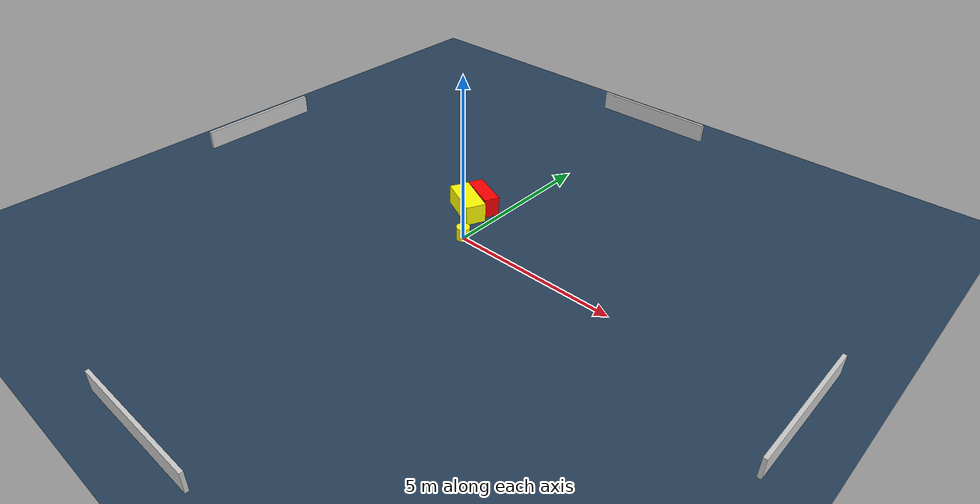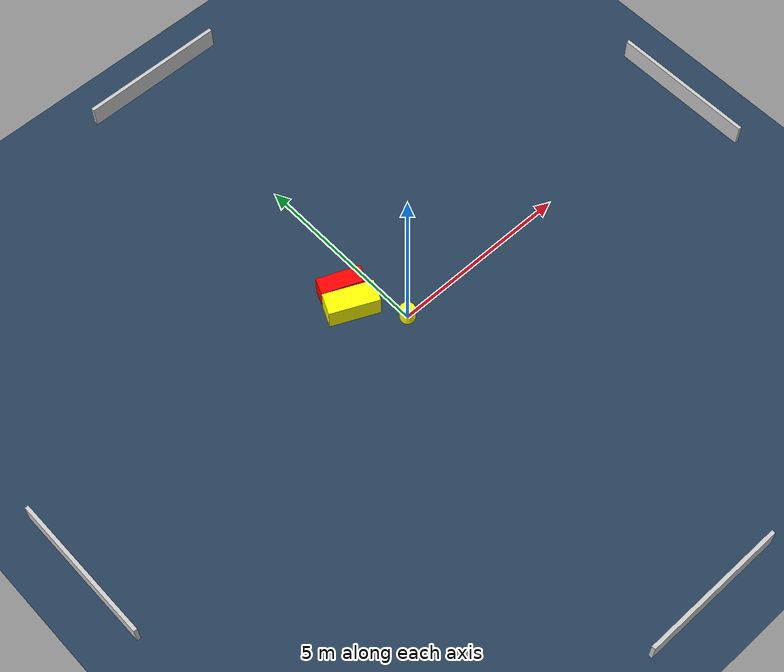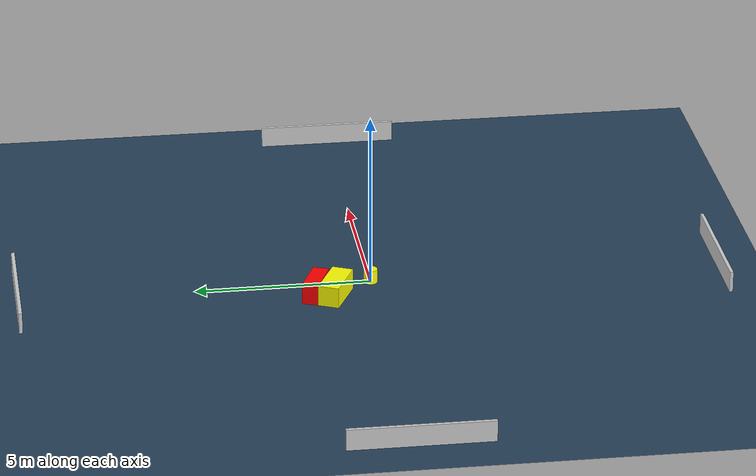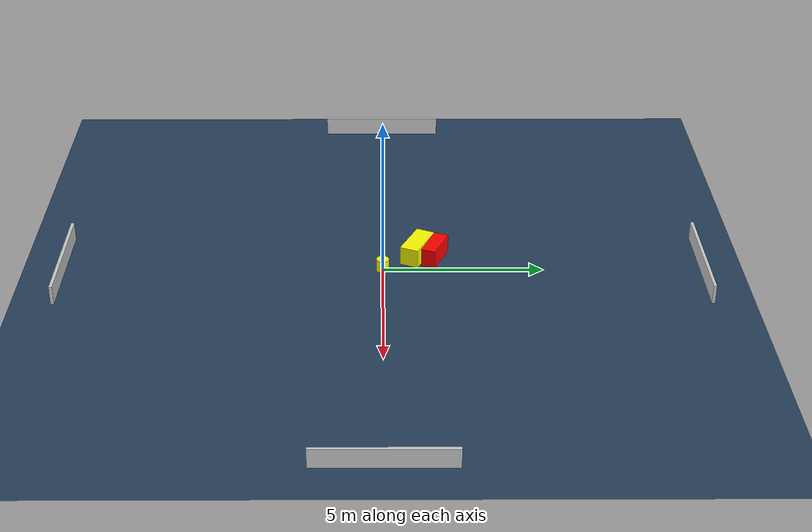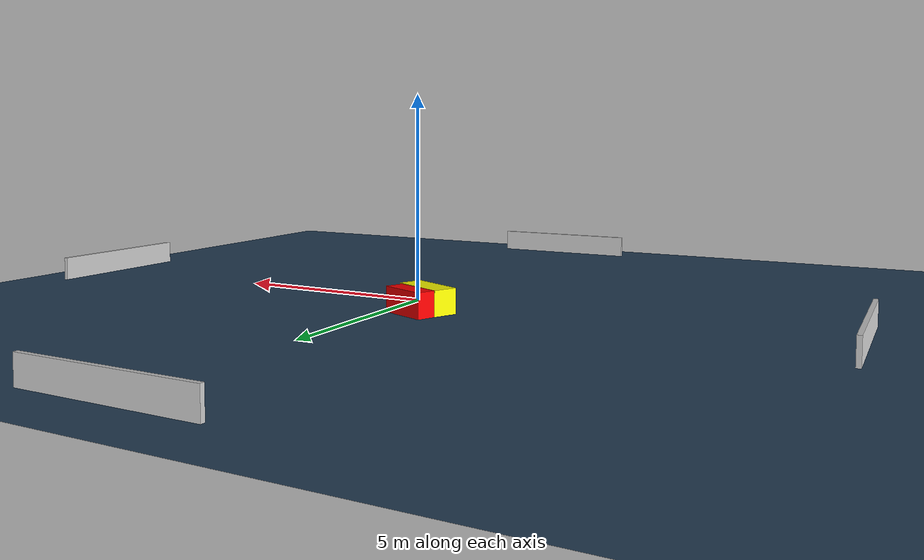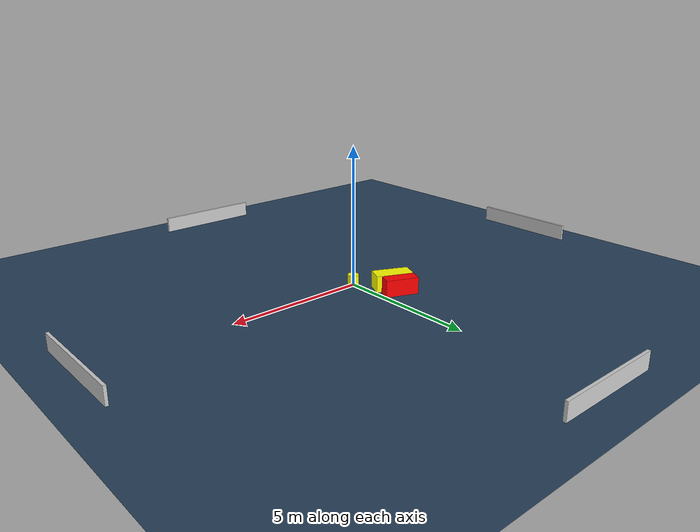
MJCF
<?xml version="1.0" ?>
<mujoco model="generated_environment">
  <option timestep="0.01" integrator="RK4" cone="elliptic"/>
  <default>
    <geom density="1"/>
  </default>
  <asset>
    <texture builtin="gradient" height="3072" name="skybox" rgb1="0.3 0.5 0.7" rgb2="0 0 0" type="skybox" width="512"/>
    <texture builtin="checker" height="300" name="groundplane" rgb1="0.2 0.3 0.4" rgb2="0.1 0.2 0.3" type="2d" width="300"/>
    <material name="groundplane" reflectance="0.2" texrepeat="5 5" texture="groundplane"/>
  </asset>
  <worldbody>
    <light dir="0 0 -1" directional="true" pos="0 0 1.5"/>
    <geom condim="3" friction="0.5 0.005 0.001" material="groundplane" name="floor" pos="0 0 0" size="0 0 0.05" type="plane"/>
    <body name="walls">
      <geom name="wall_1" condim="4" pos="-10.0 0.0 0.3" rgba="0.800000011920929 0.800000011920929 0.800000011920929 1.0" size="0.05 2.0 0.3" type="box"/>
      <geom name="wall_2" condim="4" pos="10.0 0.0 0.3" rgba="0.800000011920929 0.800000011920929 0.800000011920929 1.0" size="0.05 2.0 0.3" type="box"/>
      <geom name="wall_3" condim="4" pos="0.0 -10.0 0.3" rgba="0.800000011920929 0.800000011920929 0.800000011920929 1.0" size="2.0 0.05 0.3" type="box"/>
      <geom name="wall_4" condim="4" pos="0.0 10.0 0.3" rgba="0.800000011920929 0.800000011920929 0.800000011920929 1.0" size="2.0 0.05 0.3" type="box"/>
    </body>
    <body name="robot">
      <joint name="joint_x" type="slide" pos="0 0 0" axis="1 0 0"/>
      <joint name="joint_y" type="slide" pos="0 0 0" axis="0 1 0"/>
      <geom name="robot" type="cylinder" pos="0.0 0.0 0.2" size="0.2 0.2 0.0" mass="5.0" friction="1.0 0.005 0.0001" condim="4" rgba="1.0 1.0 0.0 1.0"/>
    </body>
    <body name="obstacle_1_movable">
      <geom name="obstacle_1_movable" condim="4" pos="-0.8610151077243418 1.100170213908586 0.3" euler="0 0 155.19735012012694" friction="0.0 0.005 0.001" rgba="1.0 1.0 0.0 1.0" size="0.6703502680541378 0.30174283074010727 0.3" type="box" mass="0.1"/>
      <joint type="free"/>
    </body>
    <body name="obstacle_2_static">
      <geom name="obstacle_2_static" condim="4" pos="-0.7099256993009719 1.6486320555743668 0.3" euler="0 0 247.5034774137879" friction="0.0 0.005 0.001" rgba="1.0 0.0 0.0 1.0" size="0.2302108266085056 0.5870161589858077 0.3" type="box"/>
    </body>
  </worldbody>
  <actuator>
    <motor name="actuator_x" joint="joint_x" gear="1" ctrlrange="-1 1"/>
    <motor name="actuator_y" joint="joint_y" gear="1" ctrlrange="-1 1"/>
  </actuator>
</mujoco>
